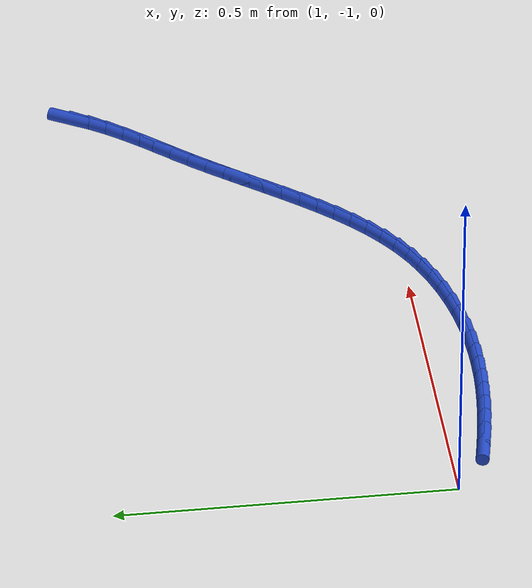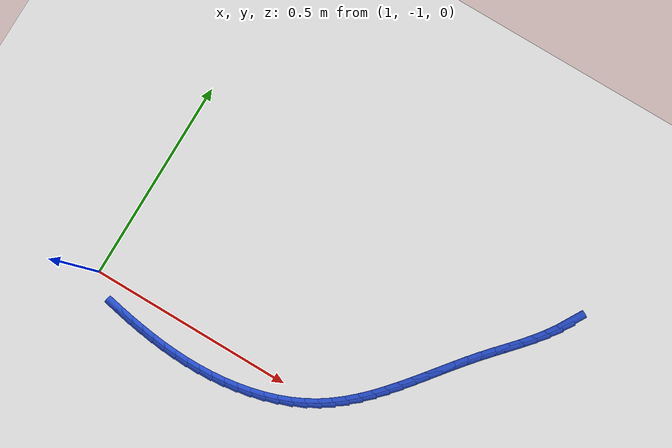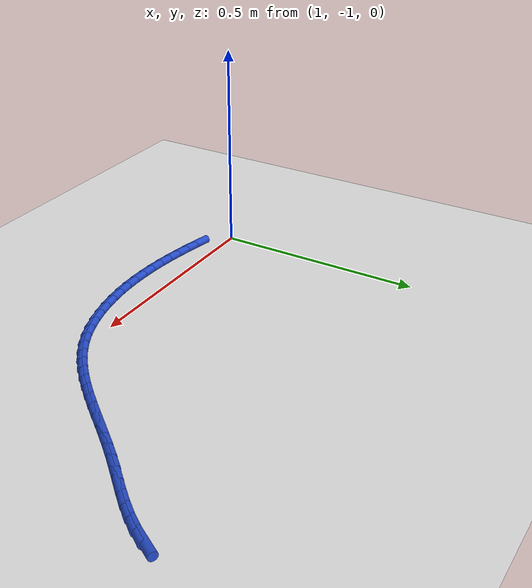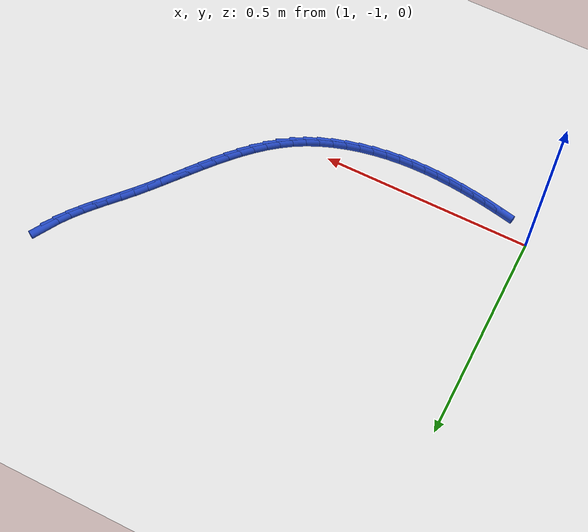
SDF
<sdf version="1.6">
 <world name="default">
  <model name="ground_plane">
   <static>1</static>
   <link name="link">
    <collision name="collision">
     <geometry><plane><normal>0 0 1</normal><size>100 100</size></plane></geometry>
     <surface><friction><ode><mu>100</mu><mu2>50</mu2></ode></friction></surface>
    </collision>
    <visual name="visual">
     <cast_shadows>0</cast_shadows>
     <geometry><plane><normal>0 0 1</normal><size>100 100</size></plane></geometry>
     <material>
      <script><uri>file://media/materials/scripts/gazebo.material</uri><name>Gazebo/WhiteGlow</name></script>
     </material>
    </visual>
   </link>
  </model>
  <model name="line">
   <link name="link_123">
    <pose>1.9916074002206023 -0.5413407130072785 0.01 0 1.57 1.0451725270043952</pose>
    <collision name="collision">
     <geometry><cylinder><radius>0.01</radius><length>0.08</length></cylinder></geometry>
    </collision>
    <visual name="visual">
     <material>
      <script><name>Gazebo/Blue</name><uri>file://media/materials/scripts/gazebo.material</uri></script>
     </material>
     <geometry><cylinder><radius>0.01</radius><length>0.08</length></cylinder></geometry>
    </visual>
   </link>
   <link name="link_124">
    <pose>1.976202319411012 -0.5678987489880347 0.01 0 1.57 0.9674167000876301</pose>
    <collision name="collision">
     <geometry><cylinder><radius>0.01</radius><length>0.08</length></cylinder></geometry>
    </collision>
    <visual name="visual">
     <material>
      <script><name>Gazebo/Blue</name><uri>file://media/materials/scripts/gazebo.material</uri></script>
     </material>
     <geometry><cylinder><radius>0.01</radius><length>0.08</length></cylinder></geometry>
    </visual>
   </link>
   <link name="link_125">
    <pose>1.958548316613259 -0.5935173133128465 0.01 0 1.57 0.9087192559915132</pose>
    <collision name="collision">
     <geometry><cylinder><radius>0.01</radius><length>0.08</length></cylinder></geometry>
    </collision>
    <visual name="visual">
     <material>
      <script><name>Gazebo/Blue</name><uri>file://media/materials/scripts/gazebo.material</uri></script>
     </material>
     <geometry><cylinder><radius>0.01</radius><length>0.08</length></cylinder></geometry>
    </visual>
   </link>
   <link name="link_126">
    <pose>1.9391177890825895 -0.6184461928365337 0.01 0 1.57 0.8684158583701903</pose>
    <collision name="collision">
     <geometry><cylinder><radius>0.01</radius><length>0.08</length></cylinder></geometry>
    </collision>
    <visual name="visual">
     <material>
      <script><name>Gazebo/Blue</name><uri>file://media/materials/scripts/gazebo.material</uri></script>
     </material>
     <geometry><cylinder><radius>0.01</radius><length>0.08</length></cylinder></geometry>
    </visual>
   </link>
   <link name="link_127">
    <pose>1.9183889232389297 -0.6429378068679523 0.01 0 1.57 0.8454654493782684</pose>
    <collision name="collision">
     <geometry><cylinder><radius>0.01</radius><length>0.08</length></cylinder></geometry>
    </collision>
    <visual name="visual">
     <material>
      <script><name>Gazebo/Blue</name><uri>file://media/materials/scripts/gazebo.material</uri></script>
     </material>
     <geometry><cylinder><radius>0.01</radius><length>0.08</length></cylinder></geometry>
    </visual>
   </link>
   <link name="link_128">
    <pose>1.896839905502205 -0.6672445747159574 0.01 0 1.57 0.8390231392994352</pose>
    <collision name="collision">
     <geometry><cylinder><radius>0.01</radius><length>0.08</length></cylinder></geometry>
    </collision>
    <visual name="visual">
     <material>
      <script><name>Gazebo/Blue</name><uri>file://media/materials/scripts/gazebo.material</uri></script>
     </material>
     <geometry><cylinder><radius>0.01</radius><length>0.08</length></cylinder></geometry>
    </visual>
   </link>
   <link name="link_129">
    <pose>1.8749489222923421 -0.6916189156894043 0.01 0 1.57 0.8485997409522712</pose>
    <collision name="collision">
     <geometry><cylinder><radius>0.01</radius><length>0.08</length></cylinder></geometry>
    </collision>
    <visual name="visual">
     <material>
      <script><name>Gazebo/Blue</name><uri>file://media/materials/scripts/gazebo.material</uri></script>
     </material>
     <geometry><cylinder><radius>0.01</radius><length>0.08</length></cylinder></geometry>
    </visual>
   </link>
   <link name="link_130">
    <pose>1.8531941600292674 -0.7163132490971483 0.01 0 1.57 0.8706644678026113</pose>
    <collision name="collision">
     <geometry><cylinder><radius>0.01</radius><length>0.08</length></cylinder></geometry>
    </collision>
    <visual name="visual">
     <material>
      <script><name>Gazebo/Blue</name><uri>file://media/materials/scripts/gazebo.material</uri></script>
     </material>
     <geometry><cylinder><radius>0.01</radius><length>0.08</length></cylinder></geometry>
    </visual>
   </link>
   <link name="link_131">
    <pose>1.8319618284090156 -0.7415144165111581 0.01 0 1.57 0.8891407247273398</pose>
    <collision name="collision">
     <geometry><cylinder><radius>0.01</radius><length>0.08</length></cylinder></geometry>
    </collision>
    <visual name="visual">
     <material>
      <script><name>Gazebo/Blue</name><uri>file://media/materials/scripts/gazebo.material</uri></script>
     </material>
     <geometry><cylinder><radius>0.01</radius><length>0.08</length></cylinder></geometry>
    </visual>
   </link>
   <link name="link_132">
    <pose>1.8112026205146468 -0.7670987440528921 0.01 0 1.57 0.8993179469921423</pose>
    <collision name="collision">
     <geometry><cylinder><radius>0.01</radius><length>0.08</length></cylinder></geometry>
    </collision>
    <visual name="visual">
     <material>
      <script><name>Gazebo/Blue</name><uri>file://media/materials/scripts/gazebo.material</uri></script>
     </material>
     <geometry><cylinder><radius>0.01</radius><length>0.08</length></cylinder></geometry>
    </visual>
   </link>
   <link name="link_133">
    <pose>1.7907384524773606 -0.7928507422114495 0.01 0 1.57 0.9012028127202272</pose>
    <collision name="collision">
     <geometry><cylinder><radius>0.01</radius><length>0.08</length></cylinder></geometry>
    </collision>
    <visual name="visual">
     <material>
      <script><name>Gazebo/Blue</name><uri>file://media/materials/scripts/gazebo.material</uri></script>
     </material>
     <geometry><cylinder><radius>0.01</radius><length>0.08</length></cylinder></geometry>
    </visual>
   </link>
   <link name="link_134">
    <pose>1.770391221082931 -0.8185549076829934 0.01 0 1.57 0.894720990980356</pose>
    <collision name="collision">
     <geometry><cylinder><radius>0.01</radius><length>0.08</length></cylinder></geometry>
    </collision>
    <visual name="visual">
     <material>
      <script><name>Gazebo/Blue</name><uri>file://media/materials/scripts/gazebo.material</uri></script>
     </material>
     <geometry><cylinder><radius>0.01</radius><length>0.08</length></cylinder></geometry>
    </visual>
   </link>
   <link name="link_135">
    <pose>1.7499828231171297 -0.843995737163686 0.01 0 1.57 0.8797098402210407</pose>
    <collision name="collision">
     <geometry><cylinder><radius>0.01</radius><length>0.08</length></cylinder></geometry>
    </collision>
    <visual name="visual">
     <material>
      <script><name>Gazebo/Blue</name><uri>file://media/materials/scripts/gazebo.material</uri></script>
     </material>
     <geometry><cylinder><radius>0.01</radius><length>0.08</length></cylinder></geometry>
    </visual>
   </link>
   <link name="link_136">
    <pose>1.7293351553657303 -0.8689577273496903 0.01 0 1.57 0.8559277265403962</pose>
    <collision name="collision">
     <geometry><cylinder><radius>0.01</radius><length>0.08</length></cylinder></geometry>
    </collision>
    <visual name="visual">
     <material>
      <script><name>Gazebo/Blue</name><uri>file://media/materials/scripts/gazebo.material</uri></script>
     </material>
     <geometry><cylinder><radius>0.01</radius><length>0.08</length></cylinder></geometry>
    </visual>
   </link>
   <link name="link_137">
    <pose>1.708270114614506 -0.8932253749371682 0.01 0 1.57 0.8230824051780615</pose>
    <collision name="collision">
     <geometry><cylinder><radius>0.01</radius><length>0.08</length></cylinder></geometry>
    </collision>
    <visual name="visual">
     <material>
      <script><name>Gazebo/Blue</name><uri>file://media/materials/scripts/gazebo.material</uri></script>
     </material>
     <geometry><cylinder><radius>0.01</radius><length>0.08</length></cylinder></geometry>
    </visual>
   </link>
   <link name="link_138">
    <pose>1.6866095976492301 -0.9165831766222831 0.01 0 1.57 0.7808837661603942</pose>
    <collision name="collision">
     <geometry><cylinder><radius>0.01</radius><length>0.08</length></cylinder></geometry>
    </collision>
    <visual name="visual">
     <material>
      <script><name>Gazebo/Blue</name><uri>file://media/materials/scripts/gazebo.material</uri></script>
     </material>
     <geometry><cylinder><radius>0.01</radius><length>0.08</length></cylinder></geometry>
    </visual>
   </link>
   <link name="link_139">
    <pose>1.6641755012556765 -0.9388156291011965 0.01 0 1.57 0.7291268574926983</pose>
    <collision name="collision">
     <geometry><cylinder><radius>0.01</radius><length>0.08</length></cylinder></geometry>
    </collision>
    <visual name="visual">
     <material>
      <script><name>Gazebo/Blue</name><uri>file://media/materials/scripts/gazebo.material</uri></script>
     </material>
     <geometry><cylinder><radius>0.01</radius><length>0.08</length></cylinder></geometry>
    </visual>
   </link>
   <link name="link_140">
    <pose>1.640789722219618 -0.9597072290700711 0.01 0 1.57 0.6678080445576204</pose>
    <collision name="collision">
     <geometry><cylinder><radius>0.01</radius><length>0.08</length></cylinder></geometry>
    </collision>
    <visual name="visual">
     <material>
      <script><name>Gazebo/Blue</name><uri>file://media/materials/scripts/gazebo.material</uri></script>
     </material>
     <geometry><cylinder><radius>0.01</radius><length>0.08</length></cylinder></geometry>
    </visual>
   </link>
   <link name="link_141">
    <pose>1.616274157326828 -0.9790424732250699 0.01 0 1.57 0.5972676471133944</pose>
    <collision name="collision">
     <geometry><cylinder><radius>0.01</radius><length>0.08</length></cylinder></geometry>
    </collision>
    <visual name="visual">
     <material>
      <script><name>Gazebo/Blue</name><uri>file://media/materials/scripts/gazebo.material</uri></script>
     </material>
     <geometry><cylinder><radius>0.01</radius><length>0.08</length></cylinder></geometry>
    </visual>
   </link>
   <link name="link_142">
    <pose>1.59045070336308 -0.9966058582623551 0.01 0 1.57 0.5192923044717173</pose>
    <collision name="collision">
     <geometry><cylinder><radius>0.01</radius><length>0.08</length></cylinder></geometry>
    </collision>
    <visual name="visual">
     <material>
      <script><name>Gazebo/Blue</name><uri>file://media/materials/scripts/gazebo.material</uri></script>
     </material>
     <geometry><cylinder><radius>0.01</radius><length>0.08</length></cylinder></geometry>
    </visual>
   </link>
   <link name="link_143">
    <pose>1.5631679768707258 -1.012201278953418 0.01 0 1.57 0.4432691984351643</pose>
    <collision name="collision">
     <geometry><cylinder><radius>0.01</radius><length>0.08</length></cylinder></geometry>
    </collision>
    <visual name="visual">
     <material>
      <script><name>Gazebo/Blue</name><uri>file://media/materials/scripts/gazebo.material</uri></script>
     </material>
     <geometry><cylinder><radius>0.01</radius><length>0.08</length></cylinder></geometry>
    </visual>
   </link>
   <link name="link_144">
    <pose>1.534513327928604 -1.0258059464362594 0.01 0 1.57 0.3734558552390191</pose>
    <collision name="collision">
     <geometry><cylinder><radius>0.01</radius><length>0.08</length></cylinder></geometry>
    </collision>
    <visual name="visual">
     <material>
      <script><name>Gazebo/Blue</name><uri>file://media/materials/scripts/gazebo.material</uri></script>
     </material>
     <geometry><cylinder><radius>0.01</radius><length>0.08</length></cylinder></geometry>
    </visual>
   </link>
   <link name="link_145">
    <pose>1.504699695504288 -1.0374882471826428 0.01 0 1.57 0.30930167968780214</pose>
    <collision name="collision">
     <geometry><cylinder><radius>0.01</radius><length>0.08</length></cylinder></geometry>
    </collision>
    <visual name="visual">
     <material>
      <script><name>Gazebo/Blue</name><uri>file://media/materials/scripts/gazebo.material</uri></script>
     </material>
     <geometry><cylinder><radius>0.01</radius><length>0.08</length></cylinder></geometry>
    </visual>
   </link>
   <link name="link_146">
    <pose>1.473941138758817 -1.0473173809051688 0.01 0 1.57 0.25013704287479466</pose>
    <collision name="collision">
     <geometry><cylinder><radius>0.01</radius><length>0.08</length></cylinder></geometry>
    </collision>
    <visual name="visual">
     <material>
      <script><name>Gazebo/Blue</name><uri>file://media/materials/scripts/gazebo.material</uri></script>
     </material>
     <geometry><cylinder><radius>0.01</radius><length>0.08</length></cylinder></geometry>
    </visual>
   </link>
   <link name="link_147">
    <pose>1.4424517168532316 -1.0553625473164394 0.01 0 1.57 0.19526626175749345</pose>
    <collision name="collision">
     <geometry><cylinder><radius>0.01</radius><length>0.08</length></cylinder></geometry>
    </collision>
    <visual name="visual">
     <material>
      <script><name>Gazebo/Blue</name><uri>file://media/materials/scripts/gazebo.material</uri></script>
     </material>
     <geometry><cylinder><radius>0.01</radius><length>0.08</length></cylinder></geometry>
    </visual>
   </link>
   <link name="link_148">
    <pose>1.4104454889485702 -1.0616929461290556 0.01 0 1.57 0.14399731866008478</pose>
    <collision name="collision">
     <geometry><cylinder><radius>0.01</radius><length>0.08</length></cylinder></geometry>
    </collision>
    <visual name="visual">
     <material>
      <script><name>Gazebo/Blue</name><uri>file://media/materials/scripts/gazebo.material</uri></script>
     </material>
     <geometry><cylinder><radius>0.01</radius><length>0.08</length></cylinder></geometry>
    </visual>
   </link>
   <link name="link_149">
    <pose>1.378136514205873 -1.0663777770556195 0.01 0 1.57 0.09565433807067715</pose>
    <collision name="collision">
     <geometry><cylinder><radius>0.01</radius><length>0.08</length></cylinder></geometry>
    </collision>
    <visual name="visual">
     <material>
      <script><name>Gazebo/Blue</name><uri>file://media/materials/scripts/gazebo.material</uri></script>
     </material>
     <geometry><cylinder><radius>0.01</radius><length>0.08</length></cylinder></geometry>
    </visual>
   </link>
   <link name="link_150">
    <pose>1.3457388477384653 -1.0694862407423056 0.01 0 1.57 0.04980617466458337</pose>
    <collision name="collision">
     <geometry><cylinder><radius>0.01</radius><length>0.08</length></cylinder></geometry>
    </collision>
    <visual name="visual">
     <material>
      <script><name>Gazebo/Blue</name><uri>file://media/materials/scripts/gazebo.material</uri></script>
     </material>
     <geometry><cylinder><radius>0.01</radius><length>0.08</length></cylinder></geometry>
    </visual>
   </link>
   <link name="link_151">
    <pose>1.3134256514218265 -1.0710969695498473 0.01 0 1.57 0.006965029776332557</pose>
    <collision name="collision">
     <geometry><cylinder><radius>0.01</radius><length>0.08</length></cylinder></geometry>
    </collision>
    <visual name="visual">
     <material>
      <script><name>Gazebo/Blue</name><uri>file://media/materials/scripts/gazebo.material</uri></script>
     </material>
     <geometry><cylinder><radius>0.01</radius><length>0.08</length></cylinder></geometry>
    </visual>
   </link>
   <link name="link_152">
    <pose>1.2812286097130314 -1.0713212265304286 0.01 0 1.57 -0.03252927252294741</pose>
    <collision name="collision">
     <geometry><cylinder><radius>0.01</radius><length>0.08</length></cylinder></geometry>
    </collision>
    <visual name="visual">
     <material>
      <script><name>Gazebo/Blue</name><uri>file://media/materials/scripts/gazebo.material</uri></script>
     </material>
     <geometry><cylinder><radius>0.01</radius><length>0.08</length></cylinder></geometry>
    </visual>
   </link>
   <link name="link_153">
    <pose>1.2491488326574536 -1.070277326491951 0.01 0 1.57 -0.06852975262174528</pose>
    <collision name="collision">
     <geometry><cylinder><radius>0.01</radius><length>0.08</length></cylinder></geometry>
    </collision>
    <visual name="visual">
     <material>
      <script><name>Gazebo/Blue</name><uri>file://media/materials/scripts/gazebo.material</uri></script>
     </material>
     <geometry><cylinder><radius>0.01</radius><length>0.08</length></cylinder></geometry>
    </visual>
   </link>
   <link name="link_154">
    <pose>1.217187430300471 -1.0680835842423186 0.01 0 1.57 -0.10094577291992693</pose>
    <collision name="collision">
     <geometry><cylinder><radius>0.01</radius><length>0.08</length></cylinder></geometry>
    </collision>
    <visual name="visual">
     <material>
      <script><name>Gazebo/Blue</name><uri>file://media/materials/scripts/gazebo.material</uri></script>
     </material>
     <geometry><cylinder><radius>0.01</radius><length>0.08</length></cylinder></geometry>
    </visual>
   </link>
   <link name="link_155">
    <pose>1.1853455126874595 -1.0648583145894335 0.01 0 1.57 -0.12973100490690168</pose>
    <collision name="collision">
     <geometry><cylinder><radius>0.01</radius><length>0.08</length></cylinder></geometry>
    </collision>
    <visual name="visual">
     <material>
      <script><name>Gazebo/Blue</name><uri>file://media/materials/scripts/gazebo.material</uri></script>
     </material>
     <geometry><cylinder><radius>0.01</radius><length>0.08</length></cylinder></geometry>
    </visual>
   </link>
   <link name="link_156">
    <pose>1.1536241898637951 -1.0607198323411993 0.01 0 1.57 -0.15487131042737035</pose>
    <collision name="collision">
     <geometry><cylinder><radius>0.01</radius><length>0.08</length></cylinder></geometry>
    </collision>
    <visual name="visual">
     <material>
      <script><name>Gazebo/Blue</name><uri>file://media/materials/scripts/gazebo.material</uri></script>
     </material>
     <geometry><cylinder><radius>0.01</radius><length>0.08</length></cylinder></geometry>
    </visual>
   </link>
   <link name="link_157">
    <pose>1.1220245718748525 -1.0557864523055176 0.01 0 1.57 -0.1763734140147042</pose>
    <collision name="collision">
     <geometry><cylinder><radius>0.01</radius><length>0.08</length></cylinder></geometry>
    </collision>
    <visual name="visual">
     <material>
      <script><name>Gazebo/Blue</name><uri>file://media/materials/scripts/gazebo.material</uri></script>
     </material>
     <geometry><cylinder><radius>0.01</radius><length>0.08</length></cylinder></geometry>
    </visual>
   </link>
   <link name="link_158">
    <pose>1.0905477687660108 -1.0501764892902925 0.01 0 1.57 -0.19427648219115554</pose>
    <collision name="collision">
     <geometry><cylinder><radius>0.01</radius><length>0.08</length></cylinder></geometry>
    </collision>
    <visual name="visual">
     <material>
      <script><name>Gazebo/Blue</name><uri>file://media/materials/scripts/gazebo.material</uri></script>
     </material>
     <geometry><cylinder><radius>0.01</radius><length>0.08</length></cylinder></geometry>
    </visual>
   </link>
  </model>
 </world>
</sdf>
